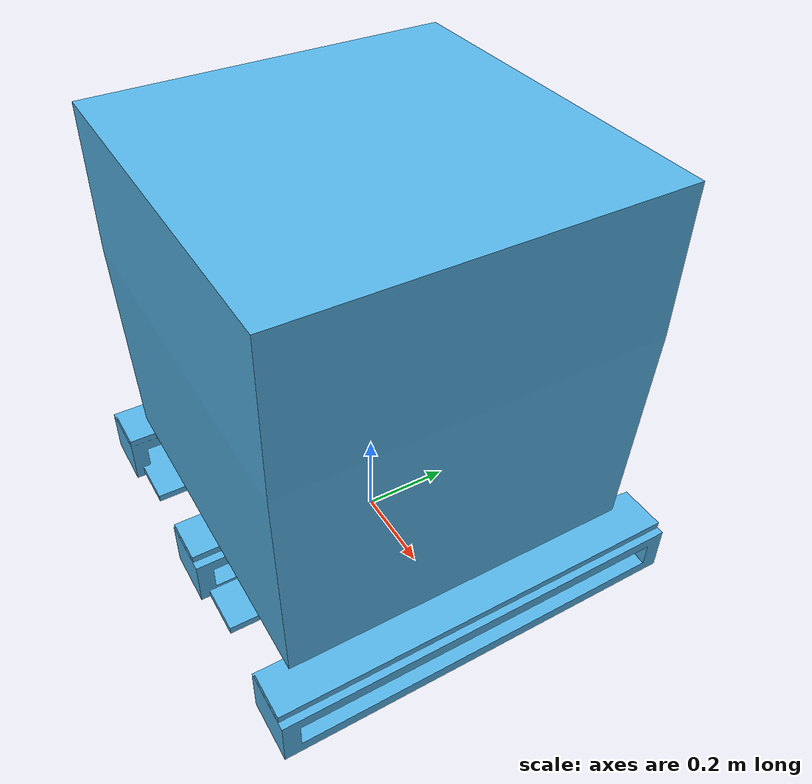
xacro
<?xml version="1.0" ?>
<robot name="pallet" xmlns:xacro="http://www.ros.org/wiki/xacro">

  <xacro:arg name="pallet_prefix" default="pallet_"/>
  <xacro:arg name="pallet_parent" default="world_interface"/>

  <xacro:arg name="x" default="0"/>
  <xacro:arg name="y" default="0"/>
  <xacro:arg name="z" default="0"/>
  <xacro:arg name="Y" default="0"/>

  <!-- URDF -->
  <xacro:include filename="$(find casus_support)/urdf/pallet/pallet.urdf.xacro"/>
  <xacro:pallet_urdf pallet_prefix="$(arg pallet_prefix)" pallet_parent="$(arg pallet_parent)">
    <origin xyz="$(arg x) $(arg y) $(arg z)" rpy="0 0 $(arg Y)"/>
  </xacro:pallet_urdf>

  <!-- Gazebo -->
  <xacro:include filename="$(find casus_support)/urdf/pallet/pallet.gazebo.xacro"/>
</robot>

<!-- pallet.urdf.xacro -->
<robot name="pallet_urdf" xmlns:xacro="http://www.ros.org/wiki/xacro">
    <xacro:macro name="pallet_urdf" params="pallet_parent pallet_prefix *origin">

  <joint name="${pallet_prefix}joint" type="fixed">
    <xacro:insert_block name="origin" />
    <parent link="${pallet_parent}"/>
    <child link="${pallet_prefix}origin"/>
  </joint>

    <!-- Links -->
    <link name="${pallet_parent}"/>
    <link name="${pallet_prefix}origin">
      <visual>
        <geometry>
          <mesh filename="package://casus_support/meshes/pallet/visual/pallet.dae"/>
        </geometry>
      </visual>
      <collision>
        <geometry>
          <mesh filename="package://casus_support/meshes/pallet/collision/pallet.dae"/>
        </geometry>
      </collision>
      <inertial>
        <inertia ixx="1.0" ixy="0" ixz="0"
                 iyy="1.0" iyz="0"
                 izz="1.0" />
        <mass value="100" />
      </inertial>
    </link>
  </xacro:macro>
</robot>
